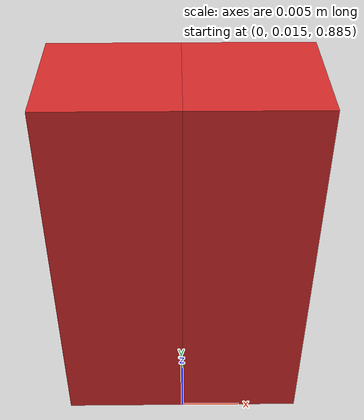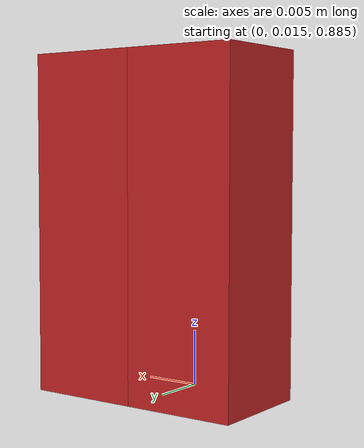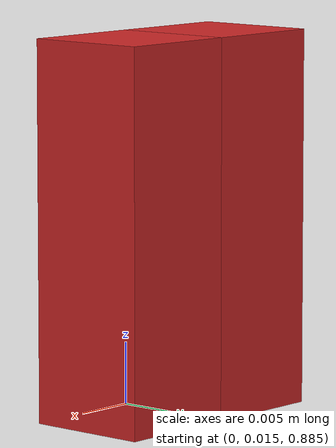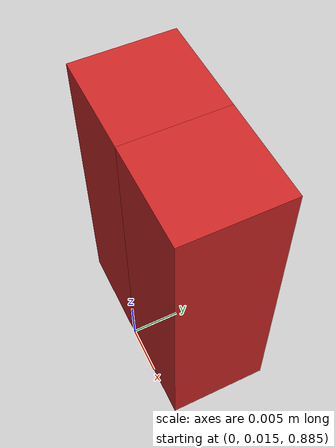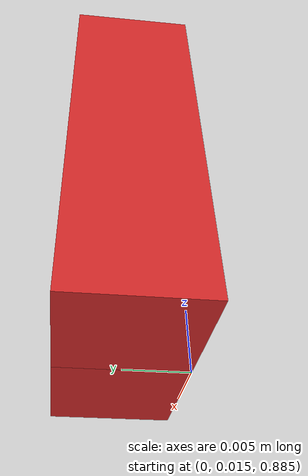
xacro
<?xml version="1.0" ?>
<robot name="dvrk_camera" xmlns:xacro="http://www.ros.org/wiki/xacro">
	<!--TODO Sort out include properly-->

  <!-- RN added world to base-->

	<link name="world">
		<origin xyz="0.0 0.0 0.0"/>
	</link>

	<joint name="world_joint" type="fixed">
		<parent link="world"/>
		<child link="base"/>
		<origin rpy="0.0 0.0 0.0" xyz="0.0 0.0 0.4"/>
	</joint>

	<link name="base">
		<origin rpy="0.0 0.0 0.0" xyz="0.0 0.0 0.8"/>
	</link>

	<joint name="left_camera_joint" type="fixed">
		<parent link="base"/>
		<child link="left_camera_link"/>
		<origin rpy="0.0 1.5708 1.5708" xyz="0.005 0.00 0.5"/>
	</joint>

	<link name="left_camera_link">
		<visual>
			<origin xyz="0 0 0.02" rpy="0 0 0"/>
			<geometry>
				<box size="0.03 0.01 0.01"/>
			</geometry>
			<material name="red"/>
		</visual>

		<inertial>
			<mass value="1e-5" />
			<origin xyz="0 0 0" rpy="0 0 0"/>
			<inertia ixx="1e-6" ixy="0" ixz="0" iyy="1e-6" iyz="0" izz="1e-6" />
		</inertial>
	</link>

	<joint name="right_camera_joint" type="fixed">
		<parent link="base"/>
		<child link="right_camera_link"/>
		<origin rpy="0.0 1.5708 1.5708" xyz="-0.005 0.0 0.5"/>
	</joint>

	<link name="right_camera_link">
		<visual>
			<origin xyz="0 0 0.02" rpy="0 0 0"/>
			<geometry>
				<box size="0.03 0.01 0.01"/>
			</geometry>
			<material name="red"/>
		</visual>

		<inertial>
			<mass value="1e-5" />
			<origin xyz="0 0 0" rpy="0 0 0"/>
			<inertia ixx="1e-6" ixy="0" ixz="0" iyy="1e-6" iyz="0" izz="1e-6" />
		</inertial>
	</link>

	<!-- TODO: These camera parameters, while workable, do not accurately reflect the physical robot.-->
	<!-- right camera -->
	<gazebo reference="right_camera_link">
		<sensor type="camera" name="right_camera">
			<update_rate>30.0</update_rate>
			<camera name="right_camera">
				<horizontal_fov>0.9</horizontal_fov>
				<image>
					<width>640</width>
					<height>480</height>
					<format>R8G8B8</format>
				</image>
				<clip>
					<near>0.005</near>
					<far>0.9</far>
				</clip>
				<noise>
					<type>gaussian</type>
					<!-- Noise is sampled independently per pixel on each frame.
					That pixel's noise value is added to each of its color
					channels, which at that point lie in the range [0,1]. -->
					<mean>0.0</mean>
					<stddev>0.007</stddev>
				</noise>
			</camera>
			<plugin name="camera_controller" filename="libgazebo_ros_camera.so">
				<alwaysOn>true</alwaysOn>
				<updateRate>0.0</updateRate>
				<cameraName>/right</cameraName>
				<imageTopicName>image_rect_color</imageTopicName>
				<cameraInfoTopicName>camera_info</cameraInfoTopicName>
				<frameName>right_camera_link</frameName>
				<hackBaseline>0.01</hackBaseline>
				<distortionK1>0.0</distortionK1>
				<distortionK2>0.0</distortionK2>
				<distortionK3>0.0</distortionK3>
				<distortionT1>0.0</distortionT1>
				<distortionT2>0.0</distortionT2>
			</plugin>
		</sensor>
	</gazebo>
	<!-- left camera -->
	<gazebo reference="left_camera_link">
		<sensor type="camera" name="left_camera">
			<update_rate>30.0</update_rate>
			<camera name="left_camera">
				<horizontal_fov>0.9</horizontal_fov>
				<image>
					<width>640</width>
					<height>480</height>
					<format>R8G8B8</format>
				</image>
				<clip>
					<near>0.005</near>
					<far>0.9</far>
				</clip>
				<noise>
					<type>gaussian</type>
					<!-- Noise is sampled independently per pixel on each frame.
					That pixel's noise value is added to each of its color
					channels, which at that point lie in the range [0,1]. -->
					<mean>0.0</mean>
					<stddev>0.007</stddev>
				</noise>
			</camera>
			<plugin name="camera_controller" filename="libgazebo_ros_camera.so">
				<alwaysOn>true</alwaysOn>
				<updateRate>0.0</updateRate>
				<cameraName>/left</cameraName>
				<imageTopicName>image_rect_color</imageTopicName>
				<cameraInfoTopicName>camera_info</cameraInfoTopicName>
				<frameName>left_camera_optical_frame</frameName>
				<hackBaseline>0.0</hackBaseline>
				<distortionK1>0.0</distortionK1>
				<distortionK2>0.0</distortionK2>
				<distortionK3>0.0</distortionK3>
				<distortionT1>0.0</distortionT1>
				<distortionT2>0.0</distortionT2>
			</plugin>
		</sensor>
	</gazebo>
</robot>
